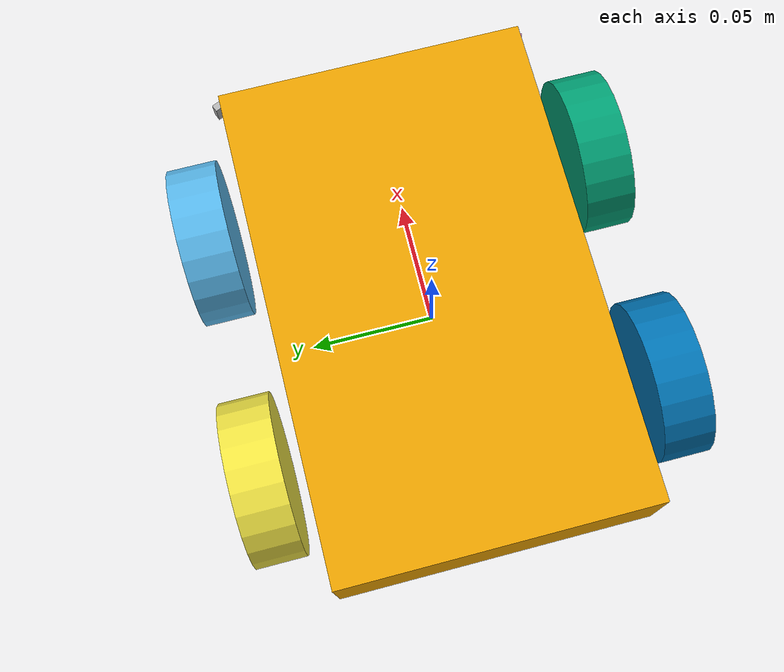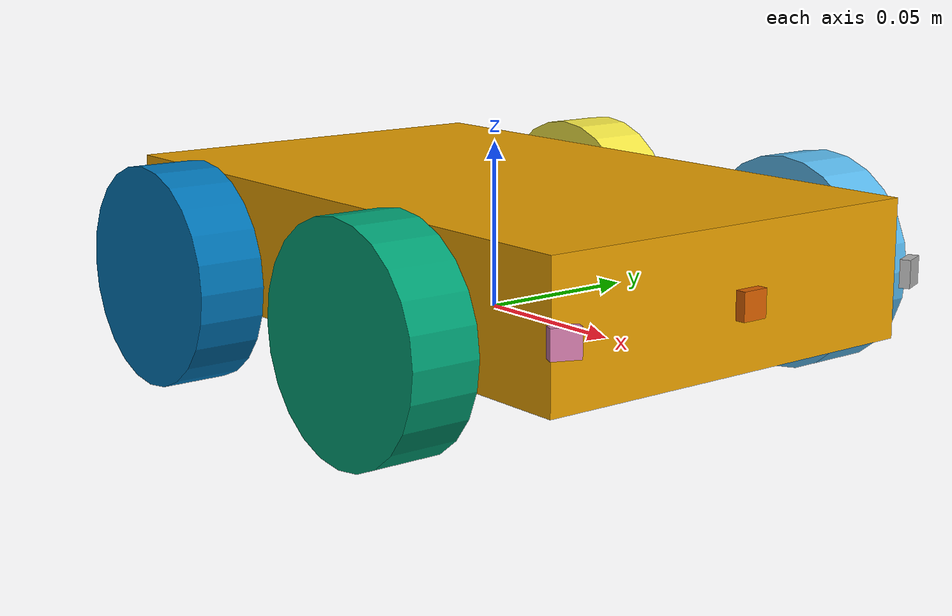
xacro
<?xml version="1.0"?>
<robot name="myrobot" xmlns:xacro="http://www.ros.org/wiki/xacro">

    <!-- property wheel -->
    <xacro:property name="wheel_radius" value="0.0325"/>
    <xacro:property name="wheel_mass" value="1"/>
    <xacro:property name="wheel_width" value="0.02"/>
    <xacro:property name="wheelbase_length" value="0.16"/>
    <xacro:property name="wheelbase_offset" value="0.05"/>

    <!-- property chassis -->
    <xacro:property name="chassis_length" value="0.2"/>
    <xacro:property name="chassis_width" value="0.125"/>
    <xacro:property name="chassis_height" value="0.04"/>
    <xacro:property name="chassis_clearance" value="0.02"/>
    <xacro:property name="chassis_mass" value="10.0"/>

    <xacro:include filename="$(find myrobot_description)/urdf/macro.xacro"/>

    <!-- ============ BASE =============== -->
    <xacro:box_inertial length="${chassis_length}" width="${chassis_width}" height="${chassis_height}">
        <origin rpy="0 0 0" xyz="0 0 ${chassis_clearance}"/>
    </xacro:box_inertial>

    <!-- ============ WHEELS =============== -->
    <xacro:wheel wheel_prefix="left" parent_link="base_link" left_right="1" radius="${wheel_radius}" width="${wheel_width}">
        <origin xyz="${wheelbase_offset} ${OFFSET_WHEEL*wheelbase_length} ${wheel_radius - chassis_clearance}"/>
    </xacro:wheel>

    <xacro:wheel wheel_prefix="right" parent_link="base_link" left_right="-1" radius="${wheel_radius}" width="${wheel_width}">
        <origin xyz="${wheelbase_offset} ${-OFFSET_WHEEL*wheelbase_length} ${wheel_radius - chassis_clearance}"/>
    </xacro:wheel>

    <xacro:back_wheel wheel_prefix="back_left" parent_link="base_link" left_right="1" radius="${wheel_radius}" width="${wheel_width}">
        <origin xyz="${-wheelbase_offset} ${OFFSET_WHEEL*wheelbase_length} ${wheel_radius - chassis_clearance}"/>
    </xacro:back_wheel>

    <xacro:back_wheel wheel_prefix="back_right" parent_link="base_link" left_right="-1" radius="${wheel_radius}" width="${wheel_width}">
        <origin xyz="${-wheelbase_offset} ${-OFFSET_WHEEL*wheelbase_length} ${wheel_radius - chassis_clearance}"/>
    </xacro:back_wheel>

    <!-- ============ IR SENSORS =============== -->
    <xacro:ir_sensor name="front_0" parent="base_link" sx="0.003" sy="0.008" sz="0.008">
        <origin rpy="0 0 0" xyz="${0.525*chassis_length} 0 ${chassis_clearance}"/>
    </xacro:ir_sensor>

    <xacro:ir_sensor name="front_1" parent="base_link" sx="0.003" sy="0.008" sz="0.008">
        <origin rpy="0 0 -0.4" xyz="${0.525*chassis_length} ${-0.5*chassis_width} ${chassis_clearance}"/>
    </xacro:ir_sensor>

    <xacro:ir_sensor name="front_2" parent="base_link" sx="0.003" sy="0.008" sz="0.008">
        <origin rpy="0 0 0.4" xyz="${0.525*chassis_length} ${0.5*chassis_width} ${chassis_clearance}"/>
    </xacro:ir_sensor>

</robot>

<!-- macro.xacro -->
<robot xmlns:xacro="http://ros.org/wiki/xacro">

     <!-- Constants for robot dimensions -->
    <xacro:property name="PI" value="3.1415926535897931"/>
    <xacro:property name="OFFSET_WHEEL" value="0.5"/>
    <xacro:property name="BIAS" value="0.0001"/>

    <!-- корпус -->
    <xacro:macro name="box_inertial" params="length width height *jorigin">
        <link name="base_link">

            <xacro:base_inertial length="${length}" width="${width}" height="${height}" mass="${chassis_mass}">
                <xacro:insert_block name="jorigin"/>
            </xacro:base_inertial>

            <visual>
                <xacro:insert_block name="jorigin"/>
                <geometry>
                    <box size="${length} ${width} ${height}"/>
                </geometry>
            </visual>

            <collision>
                <xacro:insert_block name="jorigin"/>
                <geometry>
                    <box size="${length} ${width} ${height}"/>
                </geometry>
            </collision>
        </link>

    </xacro:macro>

    <!-- колёса -->
    <xacro:macro name="wheel" params="wheel_prefix parent_link left_right radius width
    *joint_origin">

        <link name="${wheel_prefix}_wheel">
            <xacro:cylinder_inertial length="${width}" mass="${wheel_mass}" radius="${radius}">
                <origin rpy="${left_right * PI/2} 0 0" xyz="0 0 0"/>
            </xacro:cylinder_inertial>
            <visual>
                <origin rpy="${left_right * PI/2} 0 0" xyz="0 0 0"/>
                <geometry>
                    <cylinder radius="${radius}" length="${width}"/>
                    <!--mesh filename="package://myrobot_description/meshes/tire.dae" scale="${radius} ${radius} ${width/2}"/-->
                </geometry>
            </visual>

            <collision>
                <origin rpy="${left_right * PI/2} 0 0" xyz="0 0 0"/>
                <geometry>
                    <cylinder radius="${radius}" length="${width}"/>
                </geometry>
            </collision>
        </link>

        <joint name="${wheel_prefix}_wheel_joint" type="continuous">
            <parent link="${parent_link}"/>
            <child link="${wheel_prefix}_wheel"/>
            <xacro:insert_block name="joint_origin"/>
            <axis rpy="0 0 0" xyz="0 1 0"/>
        </joint>

        <transmission name="${wheel_prefix}_wheel_trans" type="SimpleTransmission">
            <type>transmission_interface/SimpleTransmission</type>
            <actuator name="${wheel_prefix}_wheel_motor">
                <mechanicalReduction>1</mechanicalReduction>
            </actuator>
            <joint name="${wheel_prefix}_wheel_joint">
                <hardwareInterface>hardware_interface/VelocityJointInterface</hardwareInterface>
            </joint>
        </transmission>
    </xacro:macro>

    <!-- задние колёса -->
    <xacro:macro name="back_wheel" params="wheel_prefix parent_link left_right radius width *joint_origin">
    <link name="${wheel_prefix}_wheel">
        <xacro:cylinder_inertial length="${width}" mass="${wheel_mass*0.25}" radius="${radius*0.5}">
            <origin rpy="${left_right * PI/2} 0 0" xyz="0 0 0"/>
        </xacro:cylinder_inertial>

        <visual>
            <origin rpy="${left_right * PI/2} 0 0" xyz="0 0 0"/>
            <geometry>
                <cylinder radius="${radius}" length="${width}"/>
            </geometry>
        </visual>

        <collision>
            <origin rpy="${left_right * PI/2} 0 0" xyz="0 0 0"/>
            <geometry>
                <cylinder length="${width}" radius="${radius}"/>
            </geometry>
        </collision>
    </link>

    <joint name="${wheel_prefix}_wheel_joint" type="continuous">
        <parent link="${parent_link}"/>
        <child link="${wheel_prefix}_wheel"/>
        <xacro:insert_block name="joint_origin"/>
        <axis rpy="0 0 0" xyz="0 1 0"/>
    </joint>
  </xacro:macro>

    <!-- Датчик -->
    <xacro:macro name="ir_sensor" params="name parent sx sy sz *origin">

        <link name="ir_sensor_${name}">
            <visual>
                <geometry>
                    <box size="${sx} ${sy} ${sz}"/>
                </geometry>
            </visual>
        </link>

        <joint name="ir_sensor_${name}_joint" type="fixed">
            <parent link="${parent}"/>
            <child link="ir_sensor_${name}"/>
            <xacro:insert_block name="origin"/>
        </joint>
    </xacro:macro>

    <!-- Инерция -->
    <xacro:macro name="cylinder_inertial" params="radius length mass *origin">
        <inertial>
        <mass value="${mass}"/>
        <xacro:insert_block name="origin"/>
        <inertia ixx="${0.0833333 * mass * (3 * radius * radius + length * length)}"
                ixy="0.0" ixz="0.0" iyy="${0.0833333 * mass * (3 * radius * radius + length * length)}"
                iyz="0.0" izz="${0.5 * mass * radius * radius}"/>
        </inertial>
    </xacro:macro>

    <xacro:macro name="base_inertial" params="length width height mass *origin">
        <inertial>
        <mass value="${mass}"/>
        <xacro:insert_block name="origin"/>
        <inertia ixx="${0.0833333 * mass * (height*height + length*length)}"
                ixy="0.0" ixz="0.0" iyy="${0.0833333 * mass * (width*width + length*length)}"
                iyz="0.0" izz="${0.0833333 * mass * (width*width + height*height)}"/>
        </inertial>
    </xacro:macro>

    <xacro:macro name="base_no_inertial" params="mass *origin">
        <inertial>
        <mass value="${mass}"/>
        <xacro:insert_block name="origin"/>
        <inertial ixx="0.0" ixy="0.0" ixz="0.0"
                 iyy="0.0" iyz="0.0" izz="0.0"/>
        </inertial>
    </xacro:macro>

</robot>
